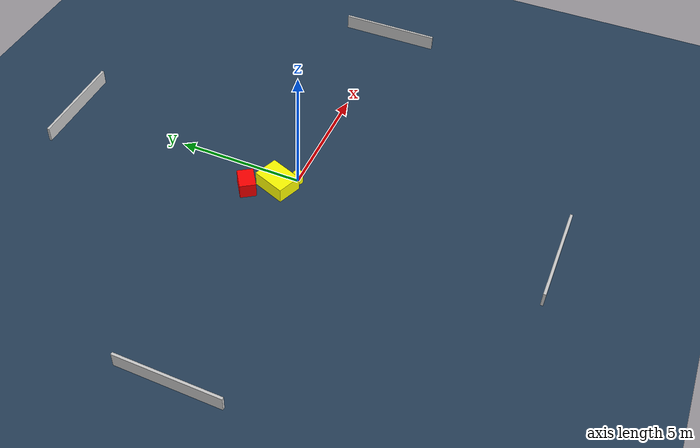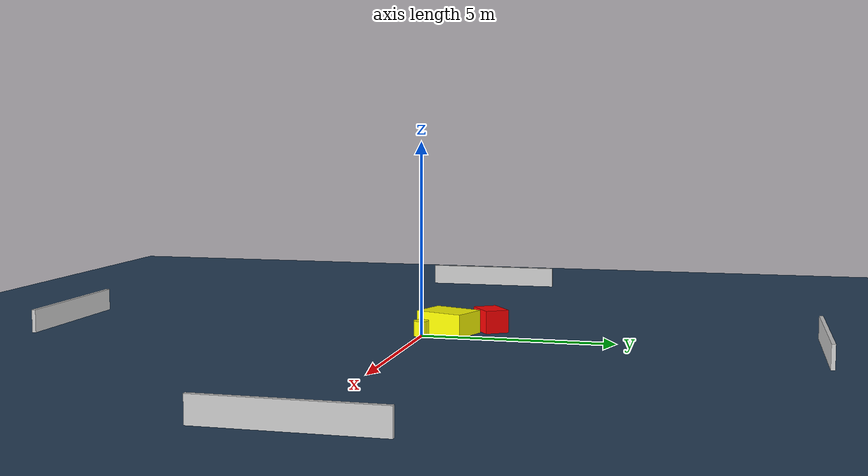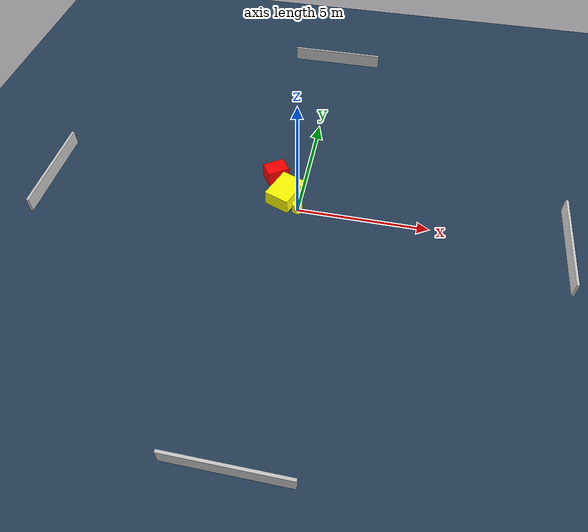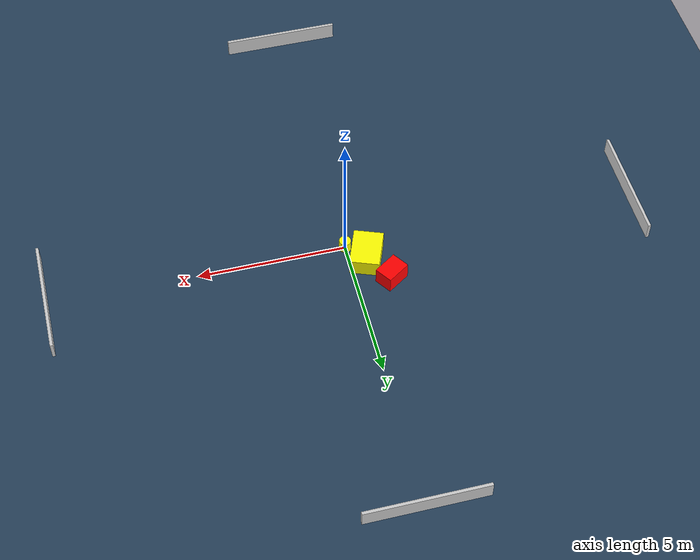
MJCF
<?xml version="1.0" ?>
<mujoco model="generated_environment">
  <option timestep="0.01" integrator="RK4" cone="elliptic"/>
  <default>
    <geom density="1"/>
  </default>
  <asset>
    <texture builtin="gradient" height="3072" name="skybox" rgb1="0.3 0.5 0.7" rgb2="0 0 0" type="skybox" width="512"/>
    <texture builtin="checker" height="300" name="groundplane" rgb1="0.2 0.3 0.4" rgb2="0.1 0.2 0.3" type="2d" width="300"/>
    <material name="groundplane" reflectance="0.2" texrepeat="5 5" texture="groundplane"/>
  </asset>
  <worldbody>
    <light dir="0 0 -1" directional="true" pos="0 0 1.5"/>
    <geom condim="3" friction="0.5 0.005 0.001" material="groundplane" name="floor" pos="0 0 0" size="0 0 0.05" type="plane"/>
    <body name="walls">
      <geom name="wall_1" condim="4" pos="-10.0 0.0 0.3" rgba="0.800000011920929 0.800000011920929 0.800000011920929 1.0" size="0.05 2.0 0.3" type="box"/>
      <geom name="wall_2" condim="4" pos="10.0 0.0 0.3" rgba="0.800000011920929 0.800000011920929 0.800000011920929 1.0" size="0.05 2.0 0.3" type="box"/>
      <geom name="wall_3" condim="4" pos="0.0 -10.0 0.3" rgba="0.800000011920929 0.800000011920929 0.800000011920929 1.0" size="2.0 0.05 0.3" type="box"/>
      <geom name="wall_4" condim="4" pos="0.0 10.0 0.3" rgba="0.800000011920929 0.800000011920929 0.800000011920929 1.0" size="2.0 0.05 0.3" type="box"/>
    </body>
    <body name="robot">
      <joint name="joint_x" type="slide" pos="0 0 0" axis="1 0 0"/>
      <joint name="joint_y" type="slide" pos="0 0 0" axis="0 1 0"/>
      <geom name="robot" type="cylinder" pos="0.0 0.0 0.2" size="0.2 0.2 0.0" mass="5.0" friction="1.0 0.005 0.0001" condim="4" rgba="1.0 1.0 0.0 1.0"/>
    </body>
    <body name="obstacle_1_movable">
      <geom name="obstacle_1_movable" condim="4" pos="-0.5836443560616529 0.5946201691198376 0.3" euler="0 0 248.9720092072526" friction="0.0 0.005 0.001" rgba="1.0 1.0 0.0 1.0" size="0.6673014599870783 0.4994428377214348 0.3" type="box" mass="0.1"/>
      <joint type="free"/>
    </body>
    <body name="obstacle_2_static">
      <geom name="obstacle_2_static" condim="4" pos="-1.180734701577565 1.6051418373225366 0.3" euler="0 0 123.72697218774184" friction="0.0 0.005 0.001" rgba="1.0 0.0 0.0 1.0" size="0.3175951529913689 0.43318996754360156 0.3" type="box"/>
    </body>
  </worldbody>
  <actuator>
    <motor name="actuator_x" joint="joint_x" gear="1" ctrlrange="-1 1"/>
    <motor name="actuator_y" joint="joint_y" gear="1" ctrlrange="-1 1"/>
  </actuator>
</mujoco>
